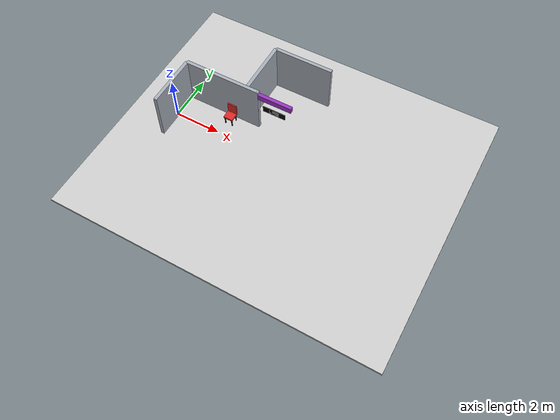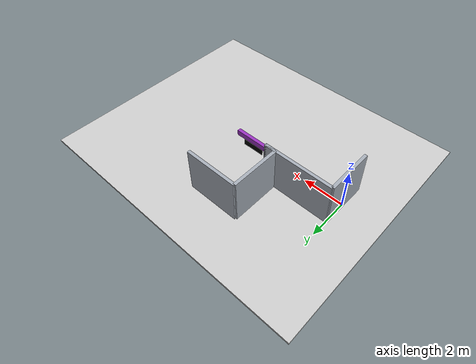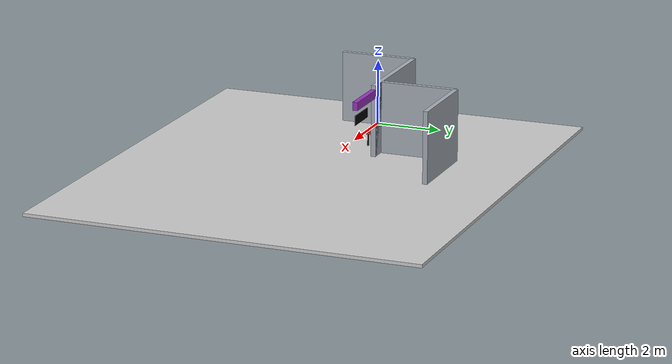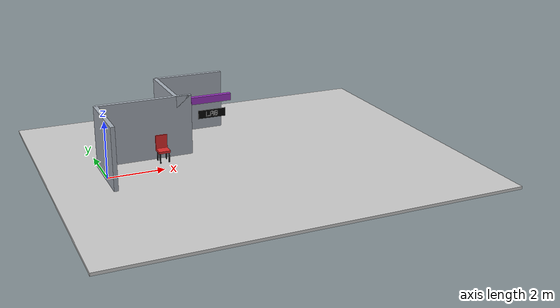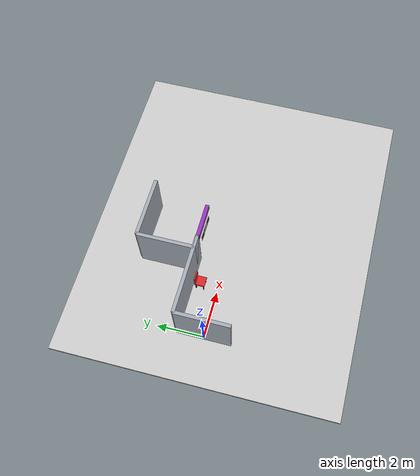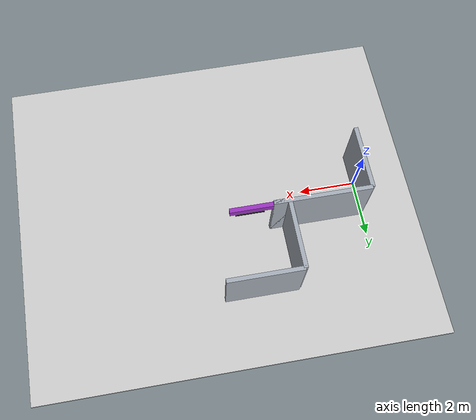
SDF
<sdf version="1.9">
 <world name="default">
  <model name="ground_plane">
   <static>true</static>
   <pose>5.15 0 -0.05 0 0 0</pose>
   <link name="body">
    <collision name="collision"><geometry><box><size>14.3 12 0.1</size></box></geometry></collision>
    <visual name="visual">
     <geometry><box><size>14.3 12 0.1</size></box></geometry>
     <material><ambient>0.8 0.8 0.8 1</ambient><diffuse>0.8 0.8 0.8 1</diffuse></material>
    </visual>
   </link>
  </model>
  <model name="start_wall">
   <static>true</static>
   <pose>0 0 1.1 0 0 0</pose>
   <link name="body">
    <collision name="collision"><geometry><box><size>0.15 2.3 2.2</size></box></geometry></collision>
    <visual name="visual">
     <geometry><box><size>0.15 2.3 2.2</size></box></geometry>
     <material><ambient>0.65 0.68 0.72 1</ambient><diffuse>0.65 0.68 0.72 1</diffuse></material>
    </visual>
   </link>
  </model>
  <model name="hall_1_1">
   <static>true</static>
   <pose>1.7000000000000002 1.15 1.1 0 0 0</pose>
   <link name="body">
    <collision name="collision">
     <geometry><box><size>3.4000000000000004 0.15 2.2</size></box></geometry>
    </collision>
    <visual name="visual">
     <geometry><box><size>3.4000000000000004 0.15 2.2</size></box></geometry>
     <material><ambient>0.65 0.68 0.72 1</ambient><diffuse>0.65 0.68 0.72 1</diffuse></material>
    </visual>
   </link>
  </model>
  <model name="room_1_1_-1">
   <static>true</static>
   <pose>2.8500000000000005 2.3499999999999996 1.1 0 0 0</pose>
   <link name="body">
    <collision name="collision"><geometry><box><size>0.15 2.4 2.2</size></box></geometry></collision>
    <visual name="visual">
     <geometry><box><size>0.15 2.4 2.2</size></box></geometry>
     <material><ambient>0.65 0.68 0.72 1</ambient><diffuse>0.65 0.68 0.72 1</diffuse></material>
    </visual>
   </link>
  </model>
  <model name="room_end_1_1">
   <static>true</static>
   <pose>4.15 3.55 1.1 0 0 0</pose>
   <link name="body">
    <collision name="collision"><geometry><box><size>2.6 0.15 2.2</size></box></geometry></collision>
    <visual name="visual">
     <geometry><box><size>2.6 0.15 2.2</size></box></geometry>
     <material><ambient>0.65 0.68 0.72 1</ambient><diffuse>0.65 0.68 0.72 1</diffuse></material>
    </visual>
   </link>
  </model>
  <model name="jamb_1_1_-1">
   <static>true</static>
   <pose>3.1250000000000004 1.15 1.1 0 0 0</pose>
   <link name="body">
    <collision name="collision"><geometry><box><size>0.55 0.15 2.2</size></box></geometry></collision>
    <visual name="visual">
     <geometry><box><size>0.55 0.15 2.2</size></box></geometry>
     <material><ambient>0.65 0.68 0.72 1</ambient><diffuse>0.65 0.68 0.72 1</diffuse></material>
    </visual>
   </link>
  </model>
  <model name="chair_seat">
   <static>true</static>
   <pose>2.2 0.7499999999999999 0.4 0 0 0</pose>
   <link name="body">
    <collision name="collision"><geometry><box><size>0.42 0.42 0.08</size></box></geometry></collision>
    <visual name="visual">
     <geometry><box><size>0.42 0.42 0.08</size></box></geometry>
     <material><ambient>0.86 0.16 0.16 1</ambient><diffuse>0.86 0.16 0.16 1</diffuse></material>
    </visual>
   </link>
  </model>
  <model name="chair_back">
   <static>true</static>
   <pose>2.2 0.94 0.67 0 0 0</pose>
   <link name="body">
    <collision name="collision"><geometry><box><size>0.42 0.05 0.5</size></box></geometry></collision>
    <visual name="visual">
     <geometry><box><size>0.42 0.05 0.5</size></box></geometry>
     <material><ambient>0.86 0.16 0.16 1</ambient><diffuse>0.86 0.16 0.16 1</diffuse></material>
    </visual>
   </link>
  </model>
  <model name="chair_leg_-0.16_-0.16">
   <static>true</static>
   <pose>2.04 0.5899999999999999 0.19 0 0 0</pose>
   <link name="body">
    <collision name="collision"><geometry><box><size>0.04 0.04 0.38</size></box></geometry></collision>
    <visual name="visual">
     <geometry><box><size>0.04 0.04 0.38</size></box></geometry>
     <material><ambient>0.2 0.2 0.2 1</ambient><diffuse>0.2 0.2 0.2 1</diffuse></material>
    </visual>
   </link>
  </model>
  <model name="chair_leg_-0.16_0.16">
   <static>true</static>
   <pose>2.04 0.9099999999999999 0.19 0 0 0</pose>
   <link name="body">
    <collision name="collision"><geometry><box><size>0.04 0.04 0.38</size></box></geometry></collision>
    <visual name="visual">
     <geometry><box><size>0.04 0.04 0.38</size></box></geometry>
     <material><ambient>0.2 0.2 0.2 1</ambient><diffuse>0.2 0.2 0.2 1</diffuse></material>
    </visual>
   </link>
  </model>
  <model name="chair_leg_0.16_-0.16">
   <static>true</static>
   <pose>2.3600000000000003 0.5899999999999999 0.19 0 0 0</pose>
   <link name="body">
    <collision name="collision"><geometry><box><size>0.04 0.04 0.38</size></box></geometry></collision>
    <visual name="visual">
     <geometry><box><size>0.04 0.04 0.38</size></box></geometry>
     <material><ambient>0.2 0.2 0.2 1</ambient><diffuse>0.2 0.2 0.2 1</diffuse></material>
    </visual>
   </link>
  </model>
  <model name="chair_leg_0.16_0.16">
   <static>true</static>
   <pose>2.3600000000000003 0.9099999999999999 0.19 0 0 0</pose>
   <link name="body">
    <collision name="collision"><geometry><box><size>0.04 0.04 0.38</size></box></geometry></collision>
    <visual name="visual">
     <geometry><box><size>0.04 0.04 0.38</size></box></geometry>
     <material><ambient>0.2 0.2 0.2 1</ambient><diffuse>0.2 0.2 0.2 1</diffuse></material>
    </visual>
   </link>
  </model>
  <model name="r3geo_base_r009_left_1_lintel">
   <static>true</static>
   <pose>4.15 1.15 1.95 0 0 0</pose>
   <link name="body">
    <collision name="collision"><geometry><box><size>1.5 0.16 0.25</size></box></geometry></collision>
    <visual name="visual">
     <geometry><box><size>1.5 0.16 0.25</size></box></geometry>
     <material><ambient>0.6 0.2 0.75 1</ambient><diffuse>0.6 0.2 0.75 1</diffuse></material>
    </visual>
   </link>
  </model>
  <model name="readable_r3geo_base_r009_left_1_entrance_corridor">
   <static>true</static>
   <pose>4.15 1.05 1.43 0 0 0</pose>
   <link name="lettering">
    <visual name="backboard">
     <geometry><box><size>1.02 0.018 0.3</size></box></geometry>
     <material>
      <ambient>.015 .015 .015 1</ambient>
      <diffuse>.015 .015 .015 1</diffuse>
      <emissive>.015 .015 .015 1</emissive>
     </material>
     <cast_shadows>false</cast_shadows>
    </visual>
    <visual name="letter_0_0_0">
     <pose>-0.208 -0.014 0.078 0 0 0</pose>
     <geometry><box><size>0.024439999999999996 0.008 0.024439999999999996</size></box></geometry>
     <material>
      <ambient>.96 .96 .96 1</ambient>
      <diffuse>.96 .96 .96 1</diffuse>
      <emissive>.96 .96 .96 1</emissive>
     </material>
     <cast_shadows>false</cast_shadows>
    </visual>
    <visual name="letter_0_1_0">
     <pose>-0.208 -0.014 0.052 0 0 0</pose>
     <geometry><box><size>0.024439999999999996 0.008 0.024439999999999996</size></box></geometry>
     <material>
      <ambient>.96 .96 .96 1</ambient>
      <diffuse>.96 .96 .96 1</diffuse>
      <emissive>.96 .96 .96 1</emissive>
     </material>
     <cast_shadows>false</cast_shadows>
    </visual>
    <visual name="letter_0_2_0">
     <pose>-0.208 -0.014 0.026 0 0 0</pose>
     <geometry><box><size>0.024439999999999996 0.008 0.024439999999999996</size></box></geometry>
     <material>
      <ambient>.96 .96 .96 1</ambient>
      <diffuse>.96 .96 .96 1</diffuse>
      <emissive>.96 .96 .96 1</emissive>
     </material>
     <cast_shadows>false</cast_shadows>
    </visual>
    <visual name="letter_0_3_0">
     <pose>-0.208 -0.014 0 0 0 0</pose>
     <geometry><box><size>0.024439999999999996 0.008 0.024439999999999996</size></box></geometry>
     <material>
      <ambient>.96 .96 .96 1</ambient>
      <diffuse>.96 .96 .96 1</diffuse>
      <emissive>.96 .96 .96 1</emissive>
     </material>
     <cast_shadows>false</cast_shadows>
    </visual>
    <visual name="letter_0_4_0">
     <pose>-0.208 -0.014 -0.026 0 0 0</pose>
     <geometry><box><size>0.024439999999999996 0.008 0.024439999999999996</size></box></geometry>
     <material>
      <ambient>.96 .96 .96 1</ambient>
      <diffuse>.96 .96 .96 1</diffuse>
      <emissive>.96 .96 .96 1</emissive>
     </material>
     <cast_shadows>false</cast_shadows>
    </visual>
    <visual name="letter_0_5_0">
     <pose>-0.208 -0.014 -0.052 0 0 0</pose>
     <geometry><box><size>0.024439999999999996 0.008 0.024439999999999996</size></box></geometry>
     <material>
      <ambient>.96 .96 .96 1</ambient>
      <diffuse>.96 .96 .96 1</diffuse>
      <emissive>.96 .96 .96 1</emissive>
     </material>
     <cast_shadows>false</cast_shadows>
    </visual>
    <visual name="letter_0_6_0">
     <pose>-0.208 -0.014 -0.078 0 0 0</pose>
     <geometry><box><size>0.024439999999999996 0.008 0.024439999999999996</size></box></geometry>
     <material>
      <ambient>.96 .96 .96 1</ambient>
      <diffuse>.96 .96 .96 1</diffuse>
      <emissive>.96 .96 .96 1</emissive>
     </material>
     <cast_shadows>false</cast_shadows>
    </visual>
    <visual name="letter_0_6_1">
     <pose>-0.182 -0.014 -0.078 0 0 0</pose>
     <geometry><box><size>0.024439999999999996 0.008 0.024439999999999996</size></box></geometry>
     <material>
      <ambient>.96 .96 .96 1</ambient>
      <diffuse>.96 .96 .96 1</diffuse>
      <emissive>.96 .96 .96 1</emissive>
     </material>
     <cast_shadows>false</cast_shadows>
    </visual>
    <visual name="letter_0_6_2">
     <pose>-0.156 -0.014 -0.078 0 0 0</pose>
     <geometry><box><size>0.024439999999999996 0.008 0.024439999999999996</size></box></geometry>
     <material>
      <ambient>.96 .96 .96 1</ambient>
      <diffuse>.96 .96 .96 1</diffuse>
      <emissive>.96 .96 .96 1</emissive>
     </material>
     <cast_shadows>false</cast_shadows>
    </visual>
    <visual name="letter_0_6_3">
     <pose>-0.13 -0.014 -0.078 0 0 0</pose>
     <geometry><box><size>0.024439999999999996 0.008 0.024439999999999996</size></box></geometry>
     <material>
      <ambient>.96 .96 .96 1</ambient>
      <diffuse>.96 .96 .96 1</diffuse>
      <emissive>.96 .96 .96 1</emissive>
     </material>
     <cast_shadows>false</cast_shadows>
    </visual>
    <visual name="letter_0_6_4">
     <pose>-0.104 -0.014 -0.078 0 0 0</pose>
     <geometry><box><size>0.024439999999999996 0.008 0.024439999999999996</size></box></geometry>
     <material>
      <ambient>.96 .96 .96 1</ambient>
      <diffuse>.96 .96 .96 1</diffuse>
      <emissive>.96 .96 .96 1</emissive>
     </material>
     <cast_shadows>false</cast_shadows>
    </visual>
    <visual name="letter_1_0_1">
     <pose>-0.026 -0.014 0.078 0 0 0</pose>
     <geometry><box><size>0.024439999999999996 0.008 0.024439999999999996</size></box></geometry>
     <material>
      <ambient>.96 .96 .96 1</ambient>
      <diffuse>.96 .96 .96 1</diffuse>
      <emissive>.96 .96 .96 1</emissive>
     </material>
     <cast_shadows>false</cast_shadows>
    </visual>
    <visual name="letter_1_0_2">
     <pose>0 -0.014 0.078 0 0 0</pose>
     <geometry><box><size>0.024439999999999996 0.008 0.024439999999999996</size></box></geometry>
     <material>
      <ambient>.96 .96 .96 1</ambient>
      <diffuse>.96 .96 .96 1</diffuse>
      <emissive>.96 .96 .96 1</emissive>
     </material>
     <cast_shadows>false</cast_shadows>
    </visual>
    <visual name="letter_1_0_3">
     <pose>0.026 -0.014 0.078 0 0 0</pose>
     <geometry><box><size>0.024439999999999996 0.008 0.024439999999999996</size></box></geometry>
     <material>
      <ambient>.96 .96 .96 1</ambient>
      <diffuse>.96 .96 .96 1</diffuse>
      <emissive>.96 .96 .96 1</emissive>
     </material>
     <cast_shadows>false</cast_shadows>
    </visual>
    <visual name="letter_1_1_0">
     <pose>-0.052 -0.014 0.052 0 0 0</pose>
     <geometry><box><size>0.024439999999999996 0.008 0.024439999999999996</size></box></geometry>
     <material>
      <ambient>.96 .96 .96 1</ambient>
      <diffuse>.96 .96 .96 1</diffuse>
      <emissive>.96 .96 .96 1</emissive>
     </material>
     <cast_shadows>false</cast_shadows>
    </visual>
    <visual name="letter_1_1_4">
     <pose>0.052 -0.014 0.052 0 0 0</pose>
     <geometry><box><size>0.024439999999999996 0.008 0.024439999999999996</size></box></geometry>
     <material>
      <ambient>.96 .96 .96 1</ambient>
      <diffuse>.96 .96 .96 1</diffuse>
      <emissive>.96 .96 .96 1</emissive>
     </material>
     <cast_shadows>false</cast_shadows>
    </visual>
    <visual name="letter_1_2_0">
     <pose>-0.052 -0.014 0.026 0 0 0</pose>
     <geometry><box><size>0.024439999999999996 0.008 0.024439999999999996</size></box></geometry>
     <material>
      <ambient>.96 .96 .96 1</ambient>
      <diffuse>.96 .96 .96 1</diffuse>
      <emissive>.96 .96 .96 1</emissive>
     </material>
     <cast_shadows>false</cast_shadows>
    </visual>
    <visual name="letter_1_2_4">
     <pose>0.052 -0.014 0.026 0 0 0</pose>
     <geometry><box><size>0.024439999999999996 0.008 0.024439999999999996</size></box></geometry>
     <material>
      <ambient>.96 .96 .96 1</ambient>
      <diffuse>.96 .96 .96 1</diffuse>
      <emissive>.96 .96 .96 1</emissive>
     </material>
     <cast_shadows>false</cast_shadows>
    </visual>
    <visual name="letter_1_3_0">
     <pose>-0.052 -0.014 0 0 0 0</pose>
     <geometry><box><size>0.024439999999999996 0.008 0.024439999999999996</size></box></geometry>
     <material>
      <ambient>.96 .96 .96 1</ambient>
      <diffuse>.96 .96 .96 1</diffuse>
      <emissive>.96 .96 .96 1</emissive>
     </material>
     <cast_shadows>false</cast_shadows>
    </visual>
    <visual name="letter_1_3_1">
     <pose>-0.026 -0.014 0 0 0 0</pose>
     <geometry><box><size>0.024439999999999996 0.008 0.024439999999999996</size></box></geometry>
     <material>
      <ambient>.96 .96 .96 1</ambient>
      <diffuse>.96 .96 .96 1</diffuse>
      <emissive>.96 .96 .96 1</emissive>
     </material>
     <cast_shadows>false</cast_shadows>
    </visual>
    <visual name="letter_1_3_2">
     <pose>0 -0.014 0 0 0 0</pose>
     <geometry><box><size>0.024439999999999996 0.008 0.024439999999999996</size></box></geometry>
     <material>
      <ambient>.96 .96 .96 1</ambient>
      <diffuse>.96 .96 .96 1</diffuse>
      <emissive>.96 .96 .96 1</emissive>
     </material>
     <cast_shadows>false</cast_shadows>
    </visual>
    <visual name="letter_1_3_3">
     <pose>0.026 -0.014 0 0 0 0</pose>
     <geometry><box><size>0.024439999999999996 0.008 0.024439999999999996</size></box></geometry>
     <material>
      <ambient>.96 .96 .96 1</ambient>
      <diffuse>.96 .96 .96 1</diffuse>
      <emissive>.96 .96 .96 1</emissive>
     </material>
     <cast_shadows>false</cast_shadows>
    </visual>
    <visual name="letter_1_3_4">
     <pose>0.052 -0.014 0 0 0 0</pose>
     <geometry><box><size>0.024439999999999996 0.008 0.024439999999999996</size></box></geometry>
     <material>
      <ambient>.96 .96 .96 1</ambient>
      <diffuse>.96 .96 .96 1</diffuse>
      <emissive>.96 .96 .96 1</emissive>
     </material>
     <cast_shadows>false</cast_shadows>
    </visual>
    <visual name="letter_1_4_0">
     <pose>-0.052 -0.014 -0.026 0 0 0</pose>
     <geometry><box><size>0.024439999999999996 0.008 0.024439999999999996</size></box></geometry>
     <material>
      <ambient>.96 .96 .96 1</ambient>
      <diffuse>.96 .96 .96 1</diffuse>
      <emissive>.96 .96 .96 1</emissive>
     </material>
     <cast_shadows>false</cast_shadows>
    </visual>
    <visual name="letter_1_4_4">
     <pose>0.052 -0.014 -0.026 0 0 0</pose>
     <geometry><box><size>0.024439999999999996 0.008 0.024439999999999996</size></box></geometry>
     <material>
      <ambient>.96 .96 .96 1</ambient>
      <diffuse>.96 .96 .96 1</diffuse>
      <emissive>.96 .96 .96 1</emissive>
     </material>
     <cast_shadows>false</cast_shadows>
    </visual>
    <visual name="letter_1_5_0">
     <pose>-0.052 -0.014 -0.052 0 0 0</pose>
     <geometry><box><size>0.024439999999999996 0.008 0.024439999999999996</size></box></geometry>
     <material>
      <ambient>.96 .96 .96 1</ambient>
      <diffuse>.96 .96 .96 1</diffuse>
      <emissive>.96 .96 .96 1</emissive>
     </material>
     <cast_shadows>false</cast_shadows>
    </visual>
    <visual name="letter_1_5_4">
     <pose>0.052 -0.014 -0.052 0 0 0</pose>
     <geometry><box><size>0.024439999999999996 0.008 0.024439999999999996</size></box></geometry>
     <material>
      <ambient>.96 .96 .96 1</ambient>
      <diffuse>.96 .96 .96 1</diffuse>
      <emissive>.96 .96 .96 1</emissive>
     </material>
     <cast_shadows>false</cast_shadows>
    </visual>
    <visual name="letter_1_6_0">
     <pose>-0.052 -0.014 -0.078 0 0 0</pose>
     <geometry><box><size>0.024439999999999996 0.008 0.024439999999999996</size></box></geometry>
     <material>
      <ambient>.96 .96 .96 1</ambient>
      <diffuse>.96 .96 .96 1</diffuse>
      <emissive>.96 .96 .96 1</emissive>
     </material>
     <cast_shadows>false</cast_shadows>
    </visual>
    <visual name="letter_1_6_4">
     <pose>0.052 -0.014 -0.078 0 0 0</pose>
     <geometry><box><size>0.024439999999999996 0.008 0.024439999999999996</size></box></geometry>
     <material>
      <ambient>.96 .96 .96 1</ambient>
      <diffuse>.96 .96 .96 1</diffuse>
      <emissive>.96 .96 .96 1</emissive>
     </material>
     <cast_shadows>false</cast_shadows>
    </visual>
    <visual name="letter_2_0_0">
     <pose>0.104 -0.014 0.078 0 0 0</pose>
     <geometry><box><size>0.024439999999999996 0.008 0.024439999999999996</size></box></geometry>
     <material>
      <ambient>.96 .96 .96 1</ambient>
      <diffuse>.96 .96 .96 1</diffuse>
      <emissive>.96 .96 .96 1</emissive>
     </material>
     <cast_shadows>false</cast_shadows>
    </visual>
    <visual name="letter_2_0_1">
     <pose>0.13 -0.014 0.078 0 0 0</pose>
     <geometry><box><size>0.024439999999999996 0.008 0.024439999999999996</size></box></geometry>
     <material>
      <ambient>.96 .96 .96 1</ambient>
      <diffuse>.96 .96 .96 1</diffuse>
      <emissive>.96 .96 .96 1</emissive>
     </material>
     <cast_shadows>false</cast_shadows>
    </visual>
    <visual name="letter_2_0_2">
     <pose>0.156 -0.014 0.078 0 0 0</pose>
     <geometry><box><size>0.024439999999999996 0.008 0.024439999999999996</size></box></geometry>
     <material>
      <ambient>.96 .96 .96 1</ambient>
      <diffuse>.96 .96 .96 1</diffuse>
      <emissive>.96 .96 .96 1</emissive>
     </material>
     <cast_shadows>false</cast_shadows>
    </visual>
    <visual name="letter_2_0_3">
     <pose>0.182 -0.014 0.078 0 0 0</pose>
     <geometry><box><size>0.024439999999999996 0.008 0.024439999999999996</size></box></geometry>
     <material>
      <ambient>.96 .96 .96 1</ambient>
      <diffuse>.96 .96 .96 1</diffuse>
      <emissive>.96 .96 .96 1</emissive>
     </material>
     <cast_shadows>false</cast_shadows>
    </visual>
    <visual name="letter_2_1_0">
     <pose>0.104 -0.014 0.052 0 0 0</pose>
     <geometry><box><size>0.024439999999999996 0.008 0.024439999999999996</size></box></geometry>
     <material>
      <ambient>.96 .96 .96 1</ambient>
      <diffuse>.96 .96 .96 1</diffuse>
      <emissive>.96 .96 .96 1</emissive>
     </material>
     <cast_shadows>false</cast_shadows>
    </visual>
    <visual name="letter_2_1_4">
     <pose>0.208 -0.014 0.052 0 0 0</pose>
     <geometry><box><size>0.024439999999999996 0.008 0.024439999999999996</size></box></geometry>
     <material>
      <ambient>.96 .96 .96 1</ambient>
      <diffuse>.96 .96 .96 1</diffuse>
      <emissive>.96 .96 .96 1</emissive>
     </material>
     <cast_shadows>false</cast_shadows>
    </visual>
    <visual name="letter_2_2_0">
     <pose>0.104 -0.014 0.026 0 0 0</pose>
     <geometry><box><size>0.024439999999999996 0.008 0.024439999999999996</size></box></geometry>
     <material>
      <ambient>.96 .96 .96 1</ambient>
      <diffuse>.96 .96 .96 1</diffuse>
      <emissive>.96 .96 .96 1</emissive>
     </material>
     <cast_shadows>false</cast_shadows>
    </visual>
    <visual name="letter_2_2_4">
     <pose>0.208 -0.014 0.026 0 0 0</pose>
     <geometry><box><size>0.024439999999999996 0.008 0.024439999999999996</size></box></geometry>
     <material>
      <ambient>.96 .96 .96 1</ambient>
      <diffuse>.96 .96 .96 1</diffuse>
      <emissive>.96 .96 .96 1</emissive>
     </material>
     <cast_shadows>false</cast_shadows>
    </visual>
    <visual name="letter_2_3_0">
     <pose>0.104 -0.014 0 0 0 0</pose>
     <geometry><box><size>0.024439999999999996 0.008 0.024439999999999996</size></box></geometry>
     <material>
      <ambient>.96 .96 .96 1</ambient>
      <diffuse>.96 .96 .96 1</diffuse>
      <emissive>.96 .96 .96 1</emissive>
     </material>
     <cast_shadows>false</cast_shadows>
    </visual>
    <visual name="letter_2_3_1">
     <pose>0.13 -0.014 0 0 0 0</pose>
     <geometry><box><size>0.024439999999999996 0.008 0.024439999999999996</size></box></geometry>
     <material>
      <ambient>.96 .96 .96 1</ambient>
      <diffuse>.96 .96 .96 1</diffuse>
      <emissive>.96 .96 .96 1</emissive>
     </material>
     <cast_shadows>false</cast_shadows>
    </visual>
    <visual name="letter_2_3_2">
     <pose>0.156 -0.014 0 0 0 0</pose>
     <geometry><box><size>0.024439999999999996 0.008 0.024439999999999996</size></box></geometry>
     <material>
      <ambient>.96 .96 .96 1</ambient>
      <diffuse>.96 .96 .96 1</diffuse>
      <emissive>.96 .96 .96 1</emissive>
     </material>
     <cast_shadows>false</cast_shadows>
    </visual>
    <visual name="letter_2_3_3">
     <pose>0.182 -0.014 0 0 0 0</pose>
     <geometry><box><size>0.024439999999999996 0.008 0.024439999999999996</size></box></geometry>
     <material>
      <ambient>.96 .96 .96 1</ambient>
      <diffuse>.96 .96 .96 1</diffuse>
      <emissive>.96 .96 .96 1</emissive>
     </material>
     <cast_shadows>false</cast_shadows>
    </visual>
    <visual name="letter_2_4_0">
     <pose>0.104 -0.014 -0.026 0 0 0</pose>
     <geometry><box><size>0.024439999999999996 0.008 0.024439999999999996</size></box></geometry>
     <material>
      <ambient>.96 .96 .96 1</ambient>
      <diffuse>.96 .96 .96 1</diffuse>
      <emissive>.96 .96 .96 1</emissive>
     </material>
     <cast_shadows>false</cast_shadows>
    </visual>
    <visual name="letter_2_4_4">
     <pose>0.208 -0.014 -0.026 0 0 0</pose>
     <geometry><box><size>0.024439999999999996 0.008 0.024439999999999996</size></box></geometry>
     <material>
      <ambient>.96 .96 .96 1</ambient>
      <diffuse>.96 .96 .96 1</diffuse>
      <emissive>.96 .96 .96 1</emissive>
     </material>
     <cast_shadows>false</cast_shadows>
    </visual>
    <visual name="letter_2_5_0">
     <pose>0.104 -0.014 -0.052 0 0 0</pose>
     <geometry><box><size>0.024439999999999996 0.008 0.024439999999999996</size></box></geometry>
     <material>
      <ambient>.96 .96 .96 1</ambient>
      <diffuse>.96 .96 .96 1</diffuse>
      <emissive>.96 .96 .96 1</emissive>
     </material>
     <cast_shadows>false</cast_shadows>
    </visual>
    <visual name="letter_2_5_4">
     <pose>0.208 -0.014 -0.052 0 0 0</pose>
     <geometry><box><size>0.024439999999999996 0.008 0.024439999999999996</size></box></geometry>
     <material>
      <ambient>.96 .96 .96 1</ambient>
      <diffuse>.96 .96 .96 1</diffuse>
      <emissive>.96 .96 .96 1</emissive>
     </material>
     <cast_shadows>false</cast_shadows>
    </visual>
    <visual name="letter_2_6_0">
     <pose>0.104 -0.014 -0.078 0 0 0</pose>
     <geometry><box><size>0.024439999999999996 0.008 0.024439999999999996</size></box></geometry>
     <material>
      <ambient>.96 .96 .96 1</ambient>
      <diffuse>.96 .96 .96 1</diffuse>
      <emissive>.96 .96 .96 1</emissive>
     </material>
     <cast_shadows>false</cast_shadows>
    </visual>
    <visual name="letter_2_6_1">
     <pose>0.13 -0.014 -0.078 0 0 0</pose>
     <geometry><box><size>0.024439999999999996 0.008 0.024439999999999996</size></box></geometry>
     <material>
      <ambient>.96 .96 .96 1</ambient>
      <diffuse>.96 .96 .96 1</diffuse>
      <emissive>.96 .96 .96 1</emissive>
     </material>
     <cast_shadows>false</cast_shadows>
    </visual>
    <visual name="letter_2_6_2">
     <pose>0.156 -0.014 -0.078 0 0 0</pose>
     <geometry><box><size>0.024439999999999996 0.008 0.024439999999999996</size></box></geometry>
     <material>
      <ambient>.96 .96 .96 1</ambient>
      <diffuse>.96 .96 .96 1</diffuse>
      <emissive>.96 .96 .96 1</emissive>
     </material>
     <cast_shadows>false</cast_shadows>
    </visual>
    <visual name="letter_2_6_3">
     <pose>0.182 -0.014 -0.078 0 0 0</pose>
     <geometry><box><size>0.024439999999999996 0.008 0.024439999999999996</size></box></geometry>
     <material>
      <ambient>.96 .96 .96 1</ambient>
      <diffuse>.96 .96 .96 1</diffuse>
      <emissive>.96 .96 .96 1</emissive>
     </material>
     <cast_shadows>false</cast_shadows>
    </visual>
   </link>
  </model>
 </world>
</sdf>
